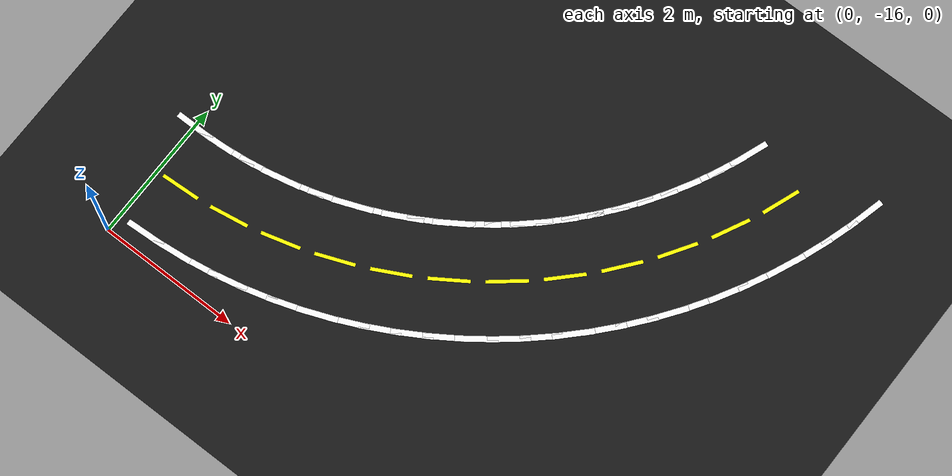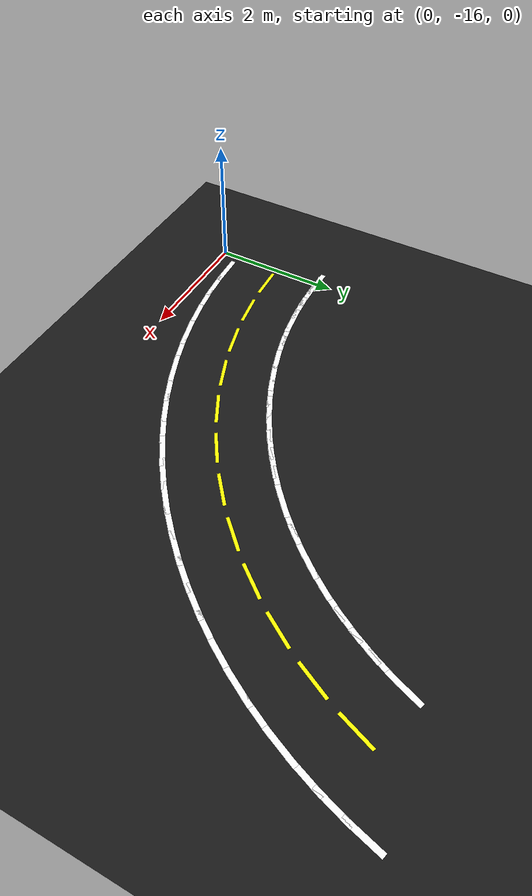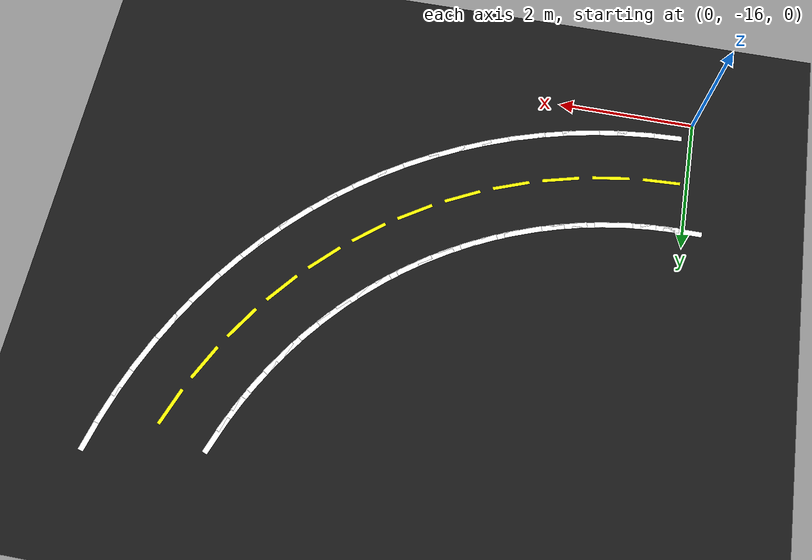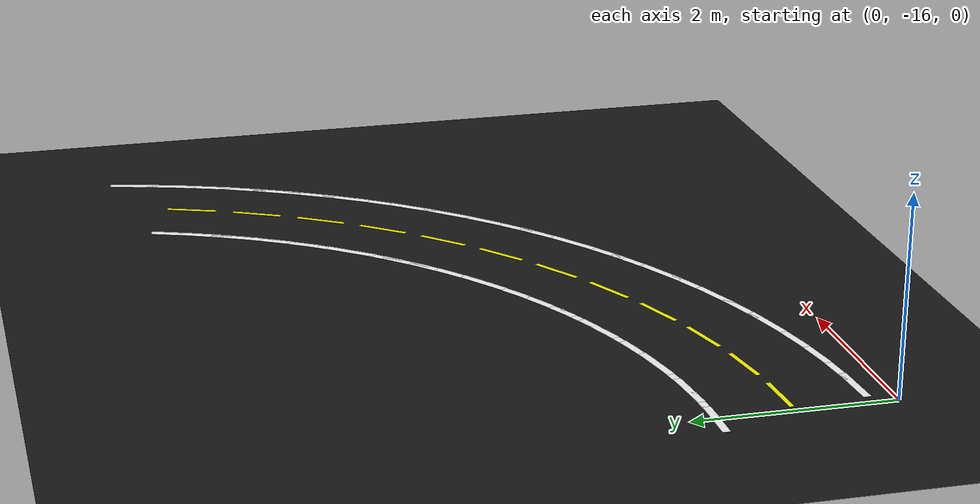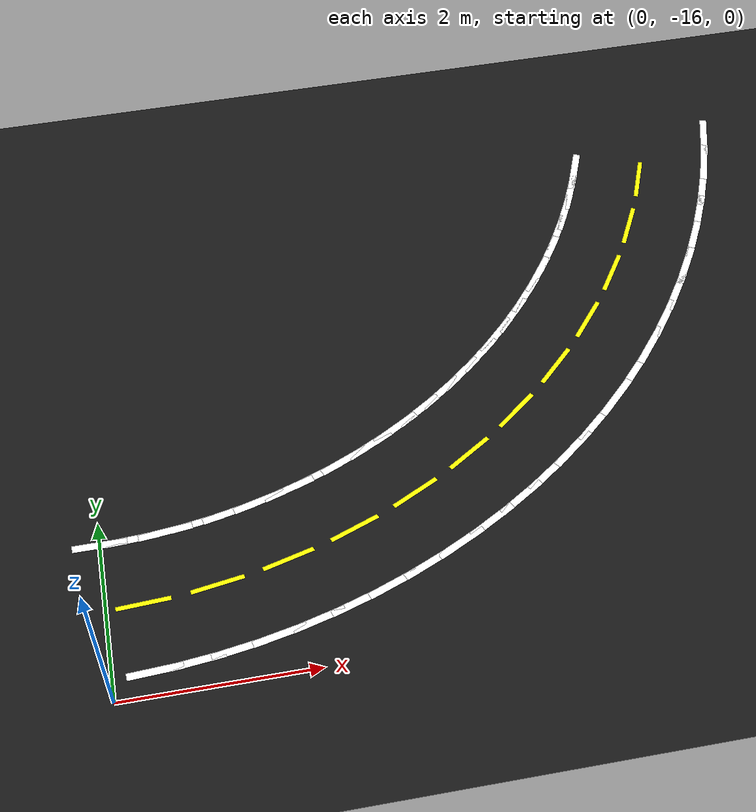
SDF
<sdf version="1.6">
 <world name="lane_world">
  <model name="ground">
   <static>true</static>
   <link name="link">
    <visual name="v">
     <geometry><plane><normal>0 0 1</normal><size>80 80</size></plane></geometry>
     <material><ambient>0.10 0.10 0.10 1</ambient><diffuse>0.10 0.10 0.10 1</diffuse></material>
    </visual>
    <collision name="c"><geometry><plane><normal>0 0 1</normal><size>80 80</size></plane></geometry></collision>
   </link>
  </model>
  <model name="seg_0384">
   <static>true</static>
   <pose>7.5075 -9.9234 0.002 0 0 1.3200</pose>
   <link name="link">
    <visual name="v">
     <geometry><box><size>0.550 0.080 0.0020</size></box></geometry>
     <material><ambient>1 1 1 1</ambient><diffuse>1 1 1 1</diffuse></material>
    </visual>
   </link>
  </model>
  <model name="seg_0387">
   <static>true</static>
   <pose>7.3956 -10.3169 0.002 0 0 1.2672</pose>
   <link name="link">
    <visual name="v">
     <geometry><box><size>0.550 0.080 0.0020</size></box></geometry>
     <material><ambient>1 1 1 1</ambient><diffuse>1 1 1 1</diffuse></material>
    </visual>
   </link>
  </model>
  <model name="seg_0388">
   <static>true</static>
   <pose>5.8572 -10.1806 0.002 0 0 1.2144</pose>
   <link name="link">
    <visual name="v">
     <geometry><box><size>0.550 0.080 0.0020</size></box></geometry>
     <material><ambient>1 1 1 1</ambient><diffuse>1 1 1 1</diffuse></material>
    </visual>
   </link>
  </model>
  <model name="seg_0389">
   <static>true</static>
   <pose>7.2630 -10.7040 0.002 0 0 1.2144</pose>
   <link name="link">
    <visual name="v">
     <geometry><box><size>0.550 0.080 0.0020</size></box></geometry>
     <material><ambient>1 1 1 1</ambient><diffuse>1 1 1 1</diffuse></material>
    </visual>
   </link>
  </model>
  <model name="seg_0390">
   <static>true</static>
   <pose>6.5601 -10.4423 0.002 0 0 1.2144</pose>
   <link name="link">
    <visual name="v">
     <geometry><box><size>0.550 0.05 0.0020</size></box></geometry>
     <material><ambient>1 1 0 1</ambient><diffuse>1 1 0 1</diffuse></material>
    </visual>
   </link>
  </model>
  <model name="seg_0391">
   <static>true</static>
   <pose>5.7340 -10.4867 0.002 0 0 1.1616</pose>
   <link name="link">
    <visual name="v">
     <geometry><box><size>0.550 0.080 0.0020</size></box></geometry>
     <material><ambient>1 1 1 1</ambient><diffuse>1 1 1 1</diffuse></material>
    </visual>
   </link>
  </model>
  <model name="seg_0392">
   <static>true</static>
   <pose>7.1102 -11.0835 0.002 0 0 1.1616</pose>
   <link name="link">
    <visual name="v">
     <geometry><box><size>0.550 0.080 0.0020</size></box></geometry>
     <material><ambient>1 1 1 1</ambient><diffuse>1 1 1 1</diffuse></material>
    </visual>
   </link>
  </model>
  <model name="seg_0393">
   <static>true</static>
   <pose>5.5948 -10.7859 0.002 0 0 1.1088</pose>
   <link name="link">
    <visual name="v">
     <geometry><box><size>0.550 0.080 0.0020</size></box></geometry>
     <material><ambient>1 1 1 1</ambient><diffuse>1 1 1 1</diffuse></material>
    </visual>
   </link>
  </model>
  <model name="seg_0394">
   <static>true</static>
   <pose>6.9375 -11.4545 0.002 0 0 1.1088</pose>
   <link name="link">
    <visual name="v">
     <geometry><box><size>0.550 0.080 0.0020</size></box></geometry>
     <material><ambient>1 1 1 1</ambient><diffuse>1 1 1 1</diffuse></material>
    </visual>
   </link>
  </model>
  <model name="seg_0395">
   <static>true</static>
   <pose>6.2661 -11.1202 0.002 0 0 1.1088</pose>
   <link name="link">
    <visual name="v">
     <geometry><box><size>0.550 0.05 0.0020</size></box></geometry>
     <material><ambient>1 1 0 1</ambient><diffuse>1 1 0 1</diffuse></material>
    </visual>
   </link>
  </model>
  <model name="seg_0396">
   <static>true</static>
   <pose>5.4399 -11.0772 0.002 0 0 1.0560</pose>
   <link name="link">
    <visual name="v">
     <geometry><box><size>0.550 0.080 0.0020</size></box></geometry>
     <material><ambient>1 1 1 1</ambient><diffuse>1 1 1 1</diffuse></material>
    </visual>
   </link>
  </model>
  <model name="seg_0397">
   <static>true</static>
   <pose>6.7455 -11.8158 0.002 0 0 1.0560</pose>
   <link name="link">
    <visual name="v">
     <geometry><box><size>0.550 0.080 0.0020</size></box></geometry>
     <material><ambient>1 1 1 1</ambient><diffuse>1 1 1 1</diffuse></material>
    </visual>
   </link>
  </model>
  <model name="seg_0398">
   <static>true</static>
   <pose>5.2700 -11.3601 0.002 0 0 1.0032</pose>
   <link name="link">
    <visual name="v">
     <geometry><box><size>0.550 0.080 0.0020</size></box></geometry>
     <material><ambient>1 1 1 1</ambient><diffuse>1 1 1 1</diffuse></material>
    </visual>
   </link>
  </model>
  <model name="seg_0399">
   <static>true</static>
   <pose>6.5348 -12.1665 0.002 0 0 1.0032</pose>
   <link name="link">
    <visual name="v">
     <geometry><box><size>0.550 0.080 0.0020</size></box></geometry>
     <material><ambient>1 1 1 1</ambient><diffuse>1 1 1 1</diffuse></material>
    </visual>
   </link>
  </model>
  <model name="seg_0400">
   <static>true</static>
   <pose>5.9024 -11.7633 0.002 0 0 1.0032</pose>
   <link name="link">
    <visual name="v">
     <geometry><box><size>0.550 0.05 0.0020</size></box></geometry>
     <material><ambient>1 1 0 1</ambient><diffuse>1 1 0 1</diffuse></material>
    </visual>
   </link>
  </model>
  <model name="seg_0401">
   <static>true</static>
   <pose>5.0853 -11.6335 0.002 0 0 0.9504</pose>
   <link name="link">
    <visual name="v">
     <geometry><box><size>0.550 0.080 0.0020</size></box></geometry>
     <material><ambient>1 1 1 1</ambient><diffuse>1 1 1 1</diffuse></material>
    </visual>
   </link>
  </model>
  <model name="seg_0402">
   <static>true</static>
   <pose>6.3058 -12.5055 0.002 0 0 0.9504</pose>
   <link name="link">
    <visual name="v">
     <geometry><box><size>0.550 0.080 0.0020</size></box></geometry>
     <material><ambient>1 1 1 1</ambient><diffuse>1 1 1 1</diffuse></material>
    </visual>
   </link>
  </model>
  <model name="seg_0403">
   <static>true</static>
   <pose>4.8864 -11.8968 0.002 0 0 0.8976</pose>
   <link name="link">
    <visual name="v">
     <geometry><box><size>0.550 0.080 0.0020</size></box></geometry>
     <material><ambient>1 1 1 1</ambient><diffuse>1 1 1 1</diffuse></material>
    </visual>
   </link>
  </model>
  <model name="seg_0404">
   <static>true</static>
   <pose>6.0592 -12.8320 0.002 0 0 0.8976</pose>
   <link name="link">
    <visual name="v">
     <geometry><box><size>0.550 0.080 0.0020</size></box></geometry>
     <material><ambient>1 1 1 1</ambient><diffuse>1 1 1 1</diffuse></material>
    </visual>
   </link>
  </model>
  <model name="seg_0405">
   <static>true</static>
   <pose>5.4728 -12.3644 0.002 0 0 0.8976</pose>
   <link name="link">
    <visual name="v">
     <geometry><box><size>0.550 0.05 0.0020</size></box></geometry>
     <material><ambient>1 1 0 1</ambient><diffuse>1 1 0 1</diffuse></material>
    </visual>
   </link>
  </model>
  <model name="seg_0406">
   <static>true</static>
   <pose>4.6740 -12.1493 0.002 0 0 0.8448</pose>
   <link name="link">
    <visual name="v">
     <geometry><box><size>0.550 0.080 0.0020</size></box></geometry>
     <material><ambient>1 1 1 1</ambient><diffuse>1 1 1 1</diffuse></material>
    </visual>
   </link>
  </model>
  <model name="seg_0407">
   <static>true</static>
   <pose>5.7957 -13.1451 0.002 0 0 0.8448</pose>
   <link name="link">
    <visual name="v">
     <geometry><box><size>0.550 0.080 0.0020</size></box></geometry>
     <material><ambient>1 1 1 1</ambient><diffuse>1 1 1 1</diffuse></material>
    </visual>
   </link>
  </model>
  <model name="seg_0408">
   <static>true</static>
   <pose>4.4485 -12.3902 0.002 0 0 0.7920</pose>
   <link name="link">
    <visual name="v">
     <geometry><box><size>0.550 0.080 0.0020</size></box></geometry>
     <material><ambient>1 1 1 1</ambient><diffuse>1 1 1 1</diffuse></material>
    </visual>
   </link>
  </model>
  <model name="seg_0409">
   <static>true</static>
   <pose>5.5161 -13.4438 0.002 0 0 0.7920</pose>
   <link name="link">
    <visual name="v">
     <geometry><box><size>0.550 0.080 0.0020</size></box></geometry>
     <material><ambient>1 1 1 1</ambient><diffuse>1 1 1 1</diffuse></material>
    </visual>
   </link>
  </model>
  <model name="seg_0410">
   <static>true</static>
   <pose>4.9823 -12.9170 0.002 0 0 0.7920</pose>
   <link name="link">
    <visual name="v">
     <geometry><box><size>0.550 0.05 0.0020</size></box></geometry>
     <material><ambient>1 1 0 1</ambient><diffuse>1 1 0 1</diffuse></material>
    </visual>
   </link>
  </model>
  <model name="seg_0411">
   <static>true</static>
   <pose>4.2106 -12.6188 0.002 0 0 0.7392</pose>
   <link name="link">
    <visual name="v">
     <geometry><box><size>0.550 0.080 0.0020</size></box></geometry>
     <material><ambient>1 1 1 1</ambient><diffuse>1 1 1 1</diffuse></material>
    </visual>
   </link>
  </model>
  <model name="seg_0412">
   <static>true</static>
   <pose>5.2211 -13.7273 0.002 0 0 0.7392</pose>
   <link name="link">
    <visual name="v">
     <geometry><box><size>0.550 0.080 0.0020</size></box></geometry>
     <material><ambient>1 1 1 1</ambient><diffuse>1 1 1 1</diffuse></material>
    </visual>
   </link>
  </model>
  <model name="seg_0413">
   <static>true</static>
   <pose>3.9610 -12.8346 0.002 0 0 0.6864</pose>
   <link name="link">
    <visual name="v">
     <geometry><box><size>0.550 0.080 0.0020</size></box></geometry>
     <material><ambient>1 1 1 1</ambient><diffuse>1 1 1 1</diffuse></material>
    </visual>
   </link>
  </model>
  <model name="seg_0414">
   <static>true</static>
   <pose>4.9116 -13.9949 0.002 0 0 0.6864</pose>
   <link name="link">
    <visual name="v">
     <geometry><box><size>0.550 0.080 0.0020</size></box></geometry>
     <material><ambient>1 1 1 1</ambient><diffuse>1 1 1 1</diffuse></material>
    </visual>
   </link>
  </model>
  <model name="seg_0415">
   <static>true</static>
   <pose>4.4363 -13.4147 0.002 0 0 0.6864</pose>
   <link name="link">
    <visual name="v">
     <geometry><box><size>0.550 0.05 0.0020</size></box></geometry>
     <material><ambient>1 1 0 1</ambient><diffuse>1 1 0 1</diffuse></material>
    </visual>
   </link>
  </model>
  <model name="seg_0416">
   <static>true</static>
   <pose>3.7003 -13.0369 0.002 0 0 0.6336</pose>
   <link name="link">
    <visual name="v">
     <geometry><box><size>0.550 0.080 0.0020</size></box></geometry>
     <material><ambient>1 1 1 1</ambient><diffuse>1 1 1 1</diffuse></material>
    </visual>
   </link>
  </model>
  <model name="seg_0417">
   <static>true</static>
   <pose>4.5884 -14.2457 0.002 0 0 0.6336</pose>
   <link name="link">
    <visual name="v">
     <geometry><box><size>0.550 0.080 0.0020</size></box></geometry>
     <material><ambient>1 1 1 1</ambient><diffuse>1 1 1 1</diffuse></material>
    </visual>
   </link>
  </model>
  <model name="seg_0418">
   <static>true</static>
   <pose>3.4293 -13.2252 0.002 0 0 0.5808</pose>
   <link name="link">
    <visual name="v">
     <geometry><box><size>0.550 0.080 0.0020</size></box></geometry>
     <material><ambient>1 1 1 1</ambient><diffuse>1 1 1 1</diffuse></material>
    </visual>
   </link>
  </model>
  <model name="seg_0419">
   <static>true</static>
   <pose>4.2524 -14.4792 0.002 0 0 0.5808</pose>
   <link name="link">
    <visual name="v">
     <geometry><box><size>0.550 0.080 0.0020</size></box></geometry>
     <material><ambient>1 1 1 1</ambient><diffuse>1 1 1 1</diffuse></material>
    </visual>
   </link>
  </model>
  <model name="seg_0420">
   <static>true</static>
   <pose>3.8408 -13.8522 0.002 0 0 0.5808</pose>
   <link name="link">
    <visual name="v">
     <geometry><box><size>0.550 0.05 0.0020</size></box></geometry>
     <material><ambient>1 1 0 1</ambient><diffuse>1 1 0 1</diffuse></material>
    </visual>
   </link>
  </model>
  <model name="seg_0421">
   <static>true</static>
   <pose>3.1488 -13.3989 0.002 0 0 0.5280</pose>
   <link name="link">
    <visual name="v">
     <geometry><box><size>0.550 0.080 0.0020</size></box></geometry>
     <material><ambient>1 1 1 1</ambient><diffuse>1 1 1 1</diffuse></material>
    </visual>
   </link>
  </model>
  <model name="seg_0422">
   <static>true</static>
   <pose>3.9045 -14.6946 0.002 0 0 0.5280</pose>
   <link name="link">
    <visual name="v">
     <geometry><box><size>0.550 0.080 0.0020</size></box></geometry>
     <material><ambient>1 1 1 1</ambient><diffuse>1 1 1 1</diffuse></material>
    </visual>
   </link>
  </model>
  <model name="seg_0423">
   <static>true</static>
   <pose>2.8595 -13.5575 0.002 0 0 0.4752</pose>
   <link name="link">
    <visual name="v">
     <geometry><box><size>0.550 0.080 0.0020</size></box></geometry>
     <material><ambient>1 1 1 1</ambient><diffuse>1 1 1 1</diffuse></material>
    </visual>
   </link>
  </model>
  <model name="seg_0424">
   <static>true</static>
   <pose>3.5457 -14.8913 0.002 0 0 0.4752</pose>
   <link name="link">
    <visual name="v">
     <geometry><box><size>0.550 0.080 0.0020</size></box></geometry>
     <material><ambient>1 1 1 1</ambient><diffuse>1 1 1 1</diffuse></material>
    </visual>
   </link>
  </model>
  <model name="seg_0425">
   <static>true</static>
   <pose>3.2026 -14.2244 0.002 0 0 0.4752</pose>
   <link name="link">
    <visual name="v">
     <geometry><box><size>0.550 0.05 0.0020</size></box></geometry>
     <material><ambient>1 1 0 1</ambient><diffuse>1 1 0 1</diffuse></material>
    </visual>
   </link>
  </model>
  <model name="seg_0426">
   <static>true</static>
   <pose>2.5622 -13.7007 0.002 0 0 0.4224</pose>
   <link name="link">
    <visual name="v">
     <geometry><box><size>0.550 0.080 0.0020</size></box></geometry>
     <material><ambient>1 1 1 1</ambient><diffuse>1 1 1 1</diffuse></material>
    </visual>
   </link>
  </model>
  <model name="seg_0427">
   <static>true</static>
   <pose>3.1771 -15.0688 0.002 0 0 0.4224</pose>
   <link name="link">
    <visual name="v">
     <geometry><box><size>0.550 0.080 0.0020</size></box></geometry>
     <material><ambient>1 1 1 1</ambient><diffuse>1 1 1 1</diffuse></material>
    </visual>
   </link>
  </model>
  <model name="seg_0428">
   <static>true</static>
   <pose>2.2578 -13.8280 0.002 0 0 0.3696</pose>
   <link name="link">
    <visual name="v">
     <geometry><box><size>0.550 0.080 0.0020</size></box></geometry>
     <material><ambient>1 1 1 1</ambient><diffuse>1 1 1 1</diffuse></material>
    </visual>
   </link>
  </model>
  <model name="seg_0429">
   <static>true</static>
   <pose>2.7996 -15.2267 0.002 0 0 0.3696</pose>
   <link name="link">
    <visual name="v">
     <geometry><box><size>0.550 0.080 0.0020</size></box></geometry>
     <material><ambient>1 1 1 1</ambient><diffuse>1 1 1 1</diffuse></material>
    </visual>
   </link>
  </model>
  <model name="seg_0430">
   <static>true</static>
   <pose>2.5287 -14.5273 0.002 0 0 0.3696</pose>
   <link name="link">
    <visual name="v">
     <geometry><box><size>0.550 0.05 0.0020</size></box></geometry>
     <material><ambient>1 1 0 1</ambient><diffuse>1 1 0 1</diffuse></material>
    </visual>
   </link>
  </model>
  <model name="seg_0431">
   <static>true</static>
   <pose>1.9470 -13.9390 0.002 0 0 0.3168</pose>
   <link name="link">
    <visual name="v">
     <geometry><box><size>0.550 0.080 0.0020</size></box></geometry>
     <material><ambient>1 1 1 1</ambient><diffuse>1 1 1 1</diffuse></material>
    </visual>
   </link>
  </model>
  <model name="seg_0432">
   <static>true</static>
   <pose>2.4143 -15.3643 0.002 0 0 0.3168</pose>
   <link name="link">
    <visual name="v">
     <geometry><box><size>0.550 0.080 0.0020</size></box></geometry>
     <material><ambient>1 1 1 1</ambient><diffuse>1 1 1 1</diffuse></material>
    </visual>
   </link>
  </model>
  <model name="seg_0433">
   <static>true</static>
   <pose>1.6309 -14.0335 0.002 0 0 0.2640</pose>
   <link name="link">
    <visual name="v">
     <geometry><box><size>0.550 0.080 0.0020</size></box></geometry>
     <material><ambient>1 1 1 1</ambient><diffuse>1 1 1 1</diffuse></material>
    </visual>
   </link>
  </model>
  <model name="seg_0434">
   <static>true</static>
   <pose>2.0223 -15.4815 0.002 0 0 0.2640</pose>
   <link name="link">
    <visual name="v">
     <geometry><box><size>0.550 0.080 0.0020</size></box></geometry>
     <material><ambient>1 1 1 1</ambient><diffuse>1 1 1 1</diffuse></material>
    </visual>
   </link>
  </model>
  <model name="seg_0435">
   <static>true</static>
   <pose>1.8266 -14.7575 0.002 0 0 0.2640</pose>
   <link name="link">
    <visual name="v">
     <geometry><box><size>0.550 0.05 0.0020</size></box></geometry>
     <material><ambient>1 1 0 1</ambient><diffuse>1 1 0 1</diffuse></material>
    </visual>
   </link>
  </model>
  <model name="seg_0436">
   <static>true</static>
   <pose>1.3102 -14.1111 0.002 0 0 0.2112</pose>
   <link name="link">
    <visual name="v">
     <geometry><box><size>0.550 0.080 0.0020</size></box></geometry>
     <material><ambient>1 1 1 1</ambient><diffuse>1 1 1 1</diffuse></material>
    </visual>
   </link>
  </model>
  <model name="seg_0437">
   <static>true</static>
   <pose>1.6247 -15.5778 0.002 0 0 0.2112</pose>
   <link name="link">
    <visual name="v">
     <geometry><box><size>0.550 0.080 0.0020</size></box></geometry>
     <material><ambient>1 1 1 1</ambient><diffuse>1 1 1 1</diffuse></material>
    </visual>
   </link>
  </model>
  <model name="seg_0438">
   <static>true</static>
   <pose>0.9859 -14.1718 0.002 0 0 0.1584</pose>
   <link name="link">
    <visual name="v">
     <geometry><box><size>0.550 0.080 0.0020</size></box></geometry>
     <material><ambient>1 1 1 1</ambient><diffuse>1 1 1 1</diffuse></material>
    </visual>
   </link>
  </model>
  <model name="seg_0439">
   <static>true</static>
   <pose>1.2225 -15.6530 0.002 0 0 0.1584</pose>
   <link name="link">
    <visual name="v">
     <geometry><box><size>0.550 0.080 0.0020</size></box></geometry>
     <material><ambient>1 1 1 1</ambient><diffuse>1 1 1 1</diffuse></material>
    </visual>
   </link>
  </model>
  <model name="seg_0440">
   <static>true</static>
   <pose>1.1042 -14.9124 0.002 0 0 0.1584</pose>
   <link name="link">
    <visual name="v">
     <geometry><box><size>0.550 0.05 0.0020</size></box></geometry>
     <material><ambient>1 1 0 1</ambient><diffuse>1 1 0 1</diffuse></material>
    </visual>
   </link>
  </model>
  <model name="seg_0441">
   <static>true</static>
   <pose>0.6588 -14.2152 0.002 0 0 0.1056</pose>
   <link name="link">
    <visual name="v">
     <geometry><box><size>0.550 0.080 0.0020</size></box></geometry>
     <material><ambient>1 1 1 1</ambient><diffuse>1 1 1 1</diffuse></material>
    </visual>
   </link>
  </model>
  <model name="seg_0442">
   <static>true</static>
   <pose>0.8169 -15.7068 0.002 0 0 0.1056</pose>
   <link name="link">
    <visual name="v">
     <geometry><box><size>0.550 0.080 0.0020</size></box></geometry>
     <material><ambient>1 1 1 1</ambient><diffuse>1 1 1 1</diffuse></material>
    </visual>
   </link>
  </model>
  <model name="seg_0443">
   <static>true</static>
   <pose>0.3298 -14.2413 0.002 0 0 0.0528</pose>
   <link name="link">
    <visual name="v">
     <geometry><box><size>0.550 0.080 0.0020</size></box></geometry>
     <material><ambient>1 1 1 1</ambient><diffuse>1 1 1 1</diffuse></material>
    </visual>
   </link>
  </model>
  <model name="seg_0444">
   <static>true</static>
   <pose>0.4090 -15.7392 0.002 0 0 0.0528</pose>
   <link name="link">
    <visual name="v">
     <geometry><box><size>0.550 0.080 0.0020</size></box></geometry>
     <material><ambient>1 1 1 1</ambient><diffuse>1 1 1 1</diffuse></material>
    </visual>
   </link>
  </model>
  <model name="seg_0445">
   <static>true</static>
   <pose>0.3694 -14.9902 0.002 0 0 0.0528</pose>
   <link name="link">
    <visual name="v">
     <geometry><box><size>0.550 0.05 0.0020</size></box></geometry>
     <material><ambient>1 1 0 1</ambient><diffuse>1 1 0 1</diffuse></material>
    </visual>
   </link>
  </model>
  <model name="seg_0446">
   <static>true</static>
   <pose>0.0000 -14.2500 0.002 0 0 0.0000</pose>
   <link name="link">
    <visual name="v">
     <geometry><box><size>0.550 0.080 0.0020</size></box></geometry>
     <material><ambient>1 1 1 1</ambient><diffuse>1 1 1 1</diffuse></material>
    </visual>
   </link>
  </model>
 </world>
</sdf>
